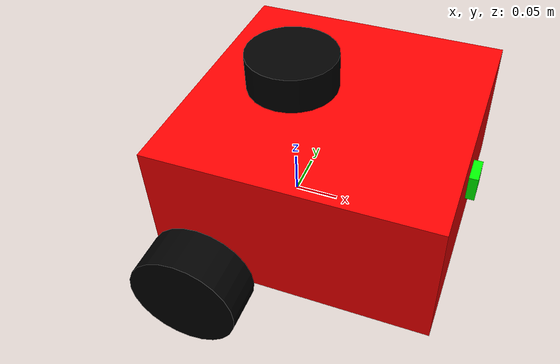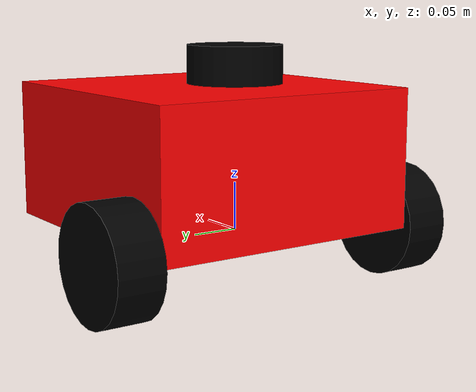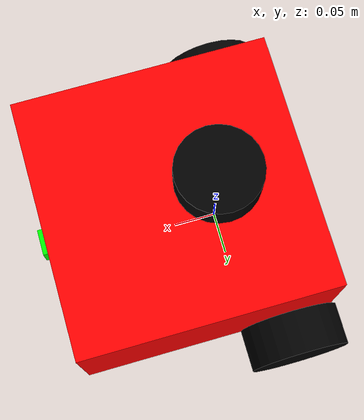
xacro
<?xml version="1.0"?>
<robot xmlns:xacro="http://www.ros.org/wiki/xacro" name="diffbot">
<xacro:include filename="ros2_control.xacro"/>
<xacro:include filename="lidar.xacro"/>
<xacro:include filename="camera.xacro"/>
<xacro:macro name="inertial_sphere" params="mass radius *origin">
        <inertial>
            <xacro:insert_block name="origin"/>
            <mass value="${mass}" />
            <inertia ixx="${(2/5) * mass * (radius*radius)}" ixy="0.0" ixz="0.0"
                    iyy="${(2/5) * mass * (radius*radius)}" iyz="0.0"
                     izz="${(2/5) * mass * (radius*radius)}" />
        </inertial>
    </xacro:macro>

    <xacro:macro name="inertial_box" params="mass x y z *origin">
        <inertial>
            <xacro:insert_block name="origin"/>
            <mass value="${mass}" />
            <inertia ixx="${(1/12) * mass * (y*y+z*z)}" ixy="0.0" ixz="0.0"
                    iyy="${(1/12) * mass * (x*x+z*z)}" iyz="0.0"
                    izz="${(1/12) * mass * (x*x+y*y)}" />
        </inertial>
    </xacro:macro>

    <xacro:macro name="inertial_cylinder" params="mass length radius *origin">
        <inertial>
            <xacro:insert_block name="origin"/>
            <mass value="${mass}" />
            <inertia ixx="${(1/12) * mass * (3*radius*radius + length*length)}" ixy="0.0" ixz="0.0"
                    iyy="${(1/12) * mass * (3*radius*radius + length*length)}" iyz="0.0"
                    izz="${(1/2) * mass * (radius*radius)}" />
        </inertial>
    </xacro:macro>
<!--colours-->
<material name="red">
 <color rgba="1 0 0 1"/>
</material>
<material name="green">
    <color rgba="0 1 0 1"/>
</material>
<material name="black">
    <color rgba="0 0 0 1"/>
</material>
<!-- chassis-->
<link name="base_link">
</link>
<joint name="base_footprint_joint" type="fixed">
    <parent link="base_link"/>
    <child link="base_footprint"/>
    <origin xyz="0 0 0" rpy="0 0 0"/>
</joint>
<link name="base_footprint">
</link>
<joint name="chassis_joint" type="fixed">
<parent link="base_link"/>
<child link="chassis"/>
<origin xyz="-0.1 0 0"/>
</joint>
<link name="chassis">
    <visual>
        <origin xyz="0.15 0 0.075"/>
        <geometry>
            <box size="0.3 0.3 0.15"/>
        </geometry>
        <material name="red"/>
    </visual>
    <collision>
        <origin xyz="0.15 0 0.075"/>
        <geometry>
            <box size="0.3 0.3 0.15"/>
        </geometry>
    </collision>
     <xacro:inertial_box mass="0.5" x="0.3" y="0.3" z="0.15">
            <origin xyz="0.15 0 0.075" rpy="0 0 0"/>
        </xacro:inertial_box>
</link>
<gazebo reference="chassis">
            <material>Gazebo/red</material>
        </gazebo>
<!-- wheels-->
<joint name="left_wheel_joint" type="continuous">
    <parent link="chassis"/>
    <child link="left_wheel"/>
    <origin xyz="0.05 0.175 0" rpy="${pi/2} 0 0"/>
    <axis  xyz="0 0 -1"/>
</joint>
<link name="left_wheel">
    <visual>
        <geometry>
            <cylinder radius="0.06" length="0.05"/>
        </geometry>
        <material name="black"/>
    </visual>
    <collision>
        <geometry>
            <cylinder radius="0.06" length="0.05"/>
        </geometry>
    </collision>
   <xacro:inertial_cylinder mass="0.1" length="0.05" radius="0.06">
            <origin xyz="0 0 0" rpy="0 0 0"/>
        </xacro:inertial_cylinder>
</link>
<gazebo reference="left_wheel">
            <material>Gazebo/black</material>
        </gazebo>
<joint name="right_wheel_joint" type="continuous">
    <parent link="chassis"/>
    <child link="right_wheel"/>
    <origin xyz="0.05 -0.175 0" rpy="${pi/2} 0 0"/>
    <axis xyz="0 0 -1"/>
</joint>
<link name="right_wheel">
    <visual>
        <geometry>
            <cylinder radius="0.06" length="0.05"/>
        </geometry>
        <material name="black"/>
    </visual>
    <collision>
        <geometry>
            <cylinder radius="0.06" length="0.05"/>
        </geometry>
    </collision>
   <xacro:inertial_cylinder mass="0.1" length="0.05" radius="0.06">
            <origin xyz="0 0 0" rpy="0 0 0"/>
        </xacro:inertial_cylinder>
</link>
<gazebo reference="right_wheel">
            <material>Gazebo/black</material>
        </gazebo>
<!--caster wheel-->
<joint name="caster_joint" type="fixed">
    <parent link="chassis"/>
    <child link="caster"/>
    <origin xyz="0.2 0 0"/>
</joint>
<link name="caster">
    <visual>
        <geometry>
            <sphere radius="0.06"/>
        </geometry>
        <material name="black"/>
    </visual>
    <collision>
        <geometry>
            <sphere radius="0.06"/>
        </geometry>
    </collision>
    <xacro:inertial_sphere mass="0.3" radius="0.06">
            <origin xyz="0 0 0" rpy="0 0 0"/>
        </xacro:inertial_sphere>
</link>
<gazebo reference="caster">
            <material>Gazebo/black</material>
            <mu1 value="0.00000001"/>
            <mu2 value="0.00000001"/>
        </gazebo>

</robot>

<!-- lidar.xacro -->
<robot xmlns:xacro="http://www.ros.org/wiki/xacro" >
    <xacro:macro name="inertial_cylinder" params="mass length radius *origin">
        <inertial>
            <xacro:insert_block name="origin"/>
            <mass value="${mass}" />
            <inertia ixx="${(1/12) * mass * (3*radius*radius + length*length)}" ixy="0.0" ixz="0.0"
                    iyy="${(1/12) * mass * (3*radius*radius + length*length)}" iyz="0.0"
                    izz="${(1/2) * mass * (radius*radius)}" />
        </inertial>
    </xacro:macro>
    <joint name="laser_joint" type="fixed">
        <parent link="chassis"/>
        <child link="laser_frame"/>
        <origin xyz="0.1 0 0.175" rpy="0 0 0"/>
    </joint>

    <link name="laser_frame">
        <visual>
            <geometry>
                <cylinder radius="0.05" length="0.04"/>
            </geometry>
            <material name="black"/>
        </visual>
        <collision>
            <geometry>
                <cylinder radius="0.05" length="0.04"/>
            </geometry>
        </collision>
        <xacro:inertial_cylinder mass="0.1" length="0.04" radius="0.05">
            <origin xyz="0 0 0" rpy="0 0 0"/>
        </xacro:inertial_cylinder>
    </link>

    <gazebo reference="laser_frame">
        <sensor name="laser" type="ray">
            <pose> 0 0 0 0 0 0 </pose>
            <visualize>true</visualize>
            <update_rate>10</update_rate>
            <ray>
                <scan>
                    <horizontal>
                        <samples>360</samples>
                        <min_angle>-3.14</min_angle>
                        <max_angle>3.14</max_angle>
                    </horizontal>
                </scan>
                <range>
                    <min>0.3</min>
                    <max>12</max>
                </range>
            </ray>
            <plugin name="laser_controller" filename="libgazebo_ros_ray_sensor.so">
                <ros>
                    <argument>~/out:=scan</argument>
                </ros>
                <output_type>sensor_msgs/LaserScan</output_type>
                <frame_name>laser_frame</frame_name>
            </plugin>
        </sensor>
    </gazebo>

</robot>

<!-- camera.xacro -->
<robot xmlns:xacro="http://www.ros.org/wiki/xacro" >

    <joint name="camera_joint" type="fixed">
        <parent link="chassis"/>
        <child link="camera_frame"/>
        <origin xyz="0.305 0 0.08" rpy="0 0 0"/>
    </joint>

    <link name="camera_frame">
        <visual>
            <geometry>
                <box size="0.010 0.03 0.03"/>
            </geometry>
            <material name="green"/>
        </visual>
    </link>
    <joint name="camera_optical_joint" type="fixed">
        <parent link="camera_frame"/>
        <child link="camera_frame_optical"/>
        <origin xyz="0 0 0" rpy="${-pi/2} 0 ${-pi/2}"/>
    </joint>
    <link name="camera_frame_optical">
    </link>
    <gazebo reference="camera_frame">
        <sensor name="camera" type="camera">
            <pose> 0 0 0 0 0 0 </pose>
            <visualize>true</visualize>
            <update_rate>10</update_rate>
            <camera>
                <horizontal_fov>1.089</horizontal_fov>
                <image>
                    <format>R8G8B8</format>
                    <width>640</width>
                    <height>480</height>
                </image>
                <clip>
                    <near>0.05</near>
                    <far>8.0</far>
                </clip>
            </camera>
            <plugin name="camera_controller" filename="libgazebo_ros_camera.so">
                <frame_name>camera_frame_optical</frame_name>
            </plugin>
        </sensor>
    </gazebo>

</robot>
